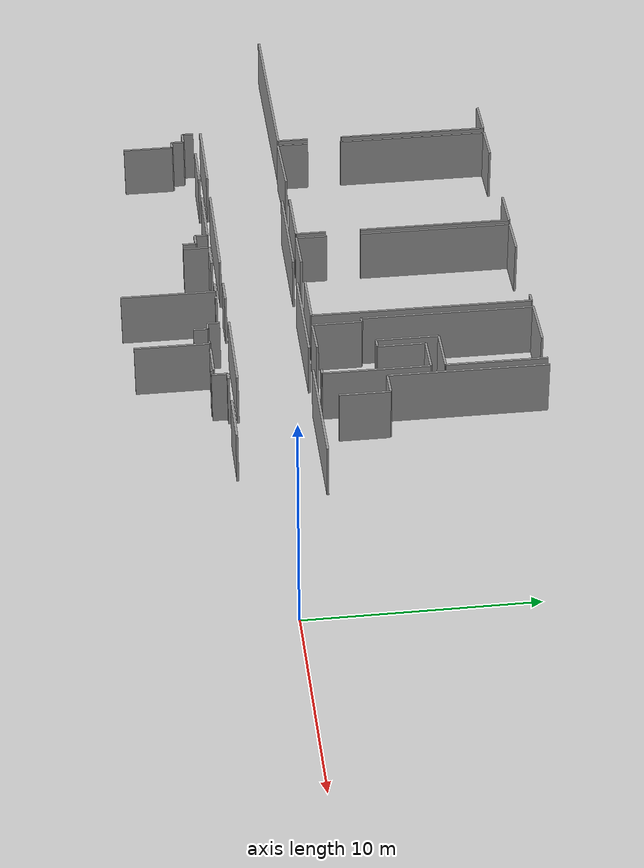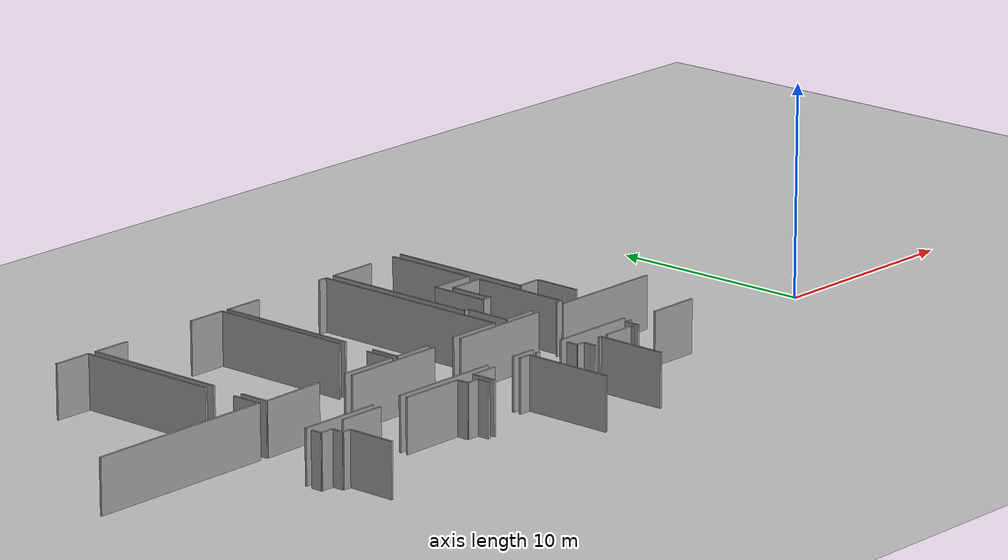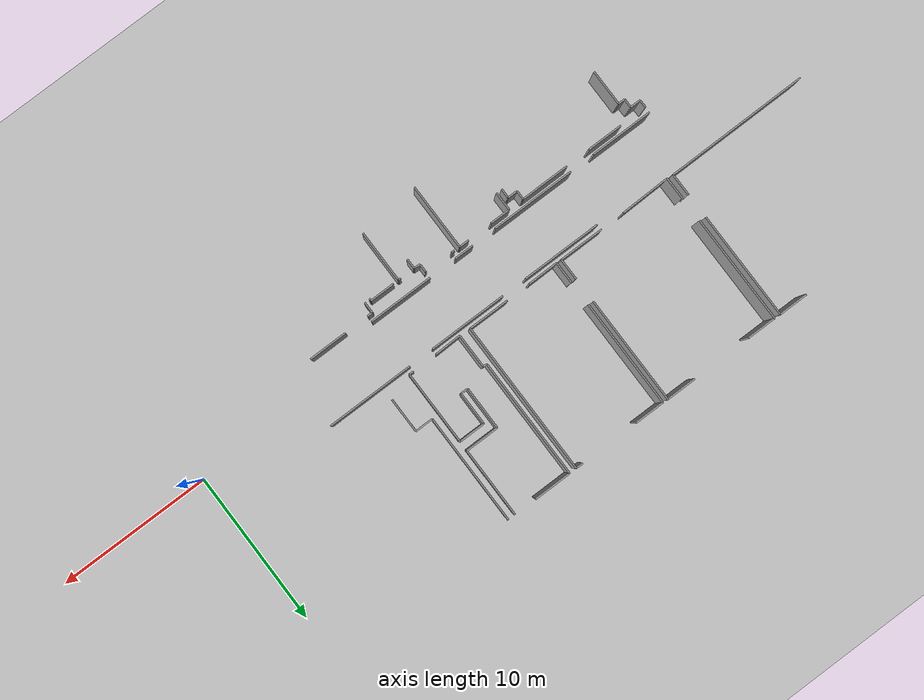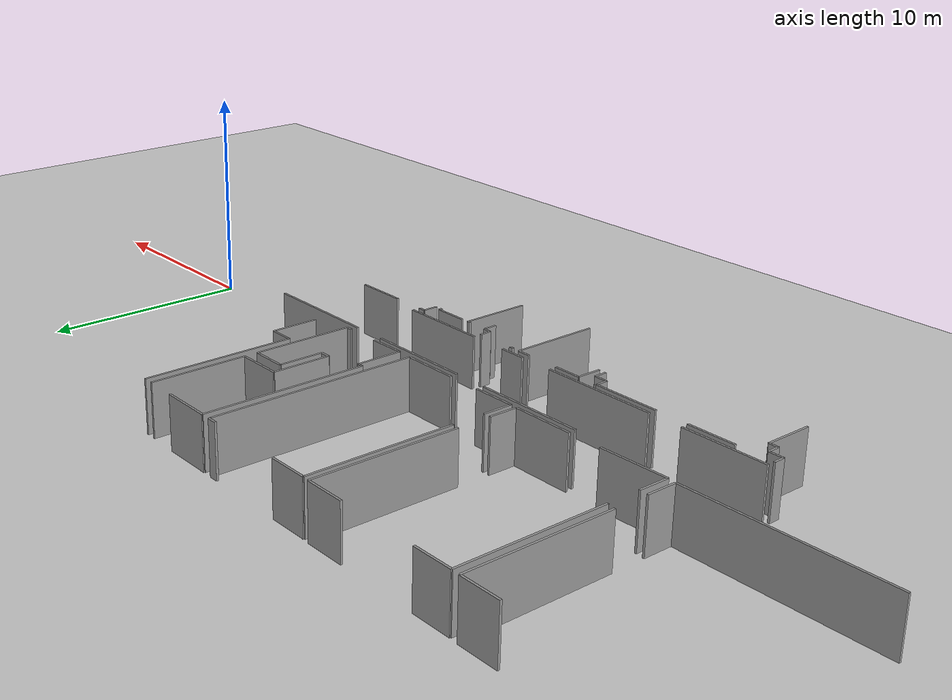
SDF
<sdf version="1.6">
 <world name="default">
  <model name="ground_plane">
   <static>1</static>
   <link name="link">
    <collision name="collision">
     <geometry><plane><normal>0 0 1</normal><size>100 100</size></plane></geometry>
     <surface><friction><ode><mu>100</mu><mu2>50</mu2></ode></friction></surface>
    </collision>
    <visual name="visual">
     <cast_shadows>0</cast_shadows>
     <geometry><plane><normal>0 0 1</normal><size>100 100</size></plane></geometry>
     <material>
      <script><uri>file://media/materials/scripts/gazebo.material</uri><name>Gazebo/Grey</name></script>
     </material>
    </visual>
   </link>
  </model>
  <model name="0510034692_Layout1">
   <static>1</static>
   <link name="Wall_25">
    <collision name="Wall_25_Collision">
     <geometry><box><size>1.8863351728 0.1 2.5</size></box></geometry>
     <pose>0.943167586402 0 1.25 0 0 0</pose>
    </collision>
    <visual name="Wall_25_Visual">
     <pose>0.943167586402 0 1.25 0 0 0</pose>
     <geometry><box><size>1.8863351728 0.1 2.5</size></box></geometry>
     <material>
      <script><uri>file://media/materials/scripts/gazebo.material</uri><name>Gazebo/Grey</name></script>
      <ambient>1 1 1 1</ambient>
     </material>
    </visual>
    <pose>22.3261585938 -0.00558312576371 0 0 0 0.0</pose>
   </link>
   <link name="Wall_26">
    <collision name="Wall_26_Collision">
     <geometry><box><size>6.96862917767 0.1 2.5</size></box></geometry>
     <pose>3.48431458883 0 1.25 0 0 0</pose>
    </collision>
    <visual name="Wall_26_Visual">
     <pose>3.48431458883 0 1.25 0 0 0</pose>
     <geometry><box><size>6.96862917767 0.1 2.5</size></box></geometry>
     <material>
      <script><uri>file://media/materials/scripts/gazebo.material</uri><name>Gazebo/Grey</name></script>
      <ambient>1 1 1 1</ambient>
     </material>
    </visual>
    <pose>24.2124937666 -0.00558312576371 0 0 0 -1.57079632679</pose>
   </link>
   <link name="Wall_27">
    <collision name="Wall_27_Collision">
     <geometry><box><size>1.44247667459 0.1 2.5</size></box></geometry>
     <pose>0.721238337294 0 1.25 0 0 0</pose>
    </collision>
    <visual name="Wall_27_Visual">
     <pose>0.721238337294 0 1.25 0 0 0</pose>
     <geometry><box><size>1.44247667459 0.1 2.5</size></box></geometry>
     <material>
      <script><uri>file://media/materials/scripts/gazebo.material</uri><name>Gazebo/Grey</name></script>
      <ambient>1 1 1 1</ambient>
     </material>
    </visual>
    <pose>24.2124937666 -8.59433388869 0 0 0 -1.57079632679</pose>
   </link>
   <link name="Wall_28">
    <collision name="Wall_28_Collision">
     <geometry><box><size>9.23231282596 0.1 2.5</size></box></geometry>
     <pose>4.61615641298 0 1.25 0 0 0</pose>
    </collision>
    <visual name="Wall_28_Visual">
     <pose>4.61615641298 0 1.25 0 0 0</pose>
     <geometry><box><size>9.23231282596 0.1 2.5</size></box></geometry>
     <material>
      <script><uri>file://media/materials/scripts/gazebo.material</uri><name>Gazebo/Grey</name></script>
      <ambient>1 1 1 1</ambient>
     </material>
    </visual>
    <pose>24.2124937666 -10.0368105633 0 0 0 -3.13678222312</pose>
   </link>
   <link name="Wall_29">
    <collision name="Wall_29_Collision">
     <geometry><box><size>1.45135892012 0.1 2.5</size></box></geometry>
     <pose>0.725679460061 0 1.25 0 0 0</pose>
    </collision>
    <visual name="Wall_29_Visual">
     <pose>0.725679460061 0 1.25 0 0 0</pose>
     <geometry><box><size>1.45135892012 0.1 2.5</size></box></geometry>
     <material>
      <script><uri>file://media/materials/scripts/gazebo.material</uri><name>Gazebo/Grey</name></script>
      <ambient>1 1 1 1</ambient>
     </material>
    </visual>
    <pose>24.6123217048 -10.087566252 0 0 0 1.57079632679</pose>
   </link>
   <link name="Wall_30">
    <collision name="Wall_30_Collision">
     <geometry><box><size>7.02052686943 0.1 2.5</size></box></geometry>
     <pose>3.51026343471 0 1.25 0 0 0</pose>
    </collision>
    <visual name="Wall_30_Visual">
     <pose>3.51026343471 0 1.25 0 0 0</pose>
     <geometry><box><size>7.02052686943 0.1 2.5</size></box></geometry>
     <material>
      <script><uri>file://media/materials/scripts/gazebo.material</uri><name>Gazebo/Grey</name></script>
      <ambient>1 1 1 1</ambient>
     </material>
    </visual>
    <pose>24.6123217048 -7.04971139046 0 0 0 1.57079632679</pose>
   </link>
   <link name="Wall_31">
    <collision name="Wall_31_Collision">
     <geometry><box><size>1.85638931644 0.1 2.5</size></box></geometry>
     <pose>0.928194658218 0 1.25 0 0 0</pose>
    </collision>
    <visual name="Wall_31_Visual">
     <pose>0.928194658218 0 1.25 0 0 0</pose>
     <geometry><box><size>1.85638931644 0.1 2.5</size></box></geometry>
     <material>
      <script><uri>file://media/materials/scripts/gazebo.material</uri><name>Gazebo/Grey</name></script>
      <ambient>1 1 1 1</ambient>
     </material>
    </visual>
    <pose>24.6123217048 -0.0291845210376 0 0 0 0.0</pose>
   </link>
   <link name="Wall_32">
    <collision name="Wall_32_Collision">
     <geometry><box><size>1.92389438249 0.1 2.5</size></box></geometry>
     <pose>0.961947191244 0 1.25 0 0 0</pose>
    </collision>
    <visual name="Wall_32_Visual">
     <pose>0.961947191244 0 1.25 0 0 0</pose>
     <geometry><box><size>1.92389438249 0.1 2.5</size></box></geometry>
     <material>
      <script><uri>file://media/materials/scripts/gazebo.material</uri><name>Gazebo/Grey</name></script>
      <ambient>1 1 1 1</ambient>
     </material>
    </visual>
    <pose>30.3502523192 -0.0291845210376 0 0 0 0.0</pose>
   </link>
   <link name="Wall_33">
    <collision name="Wall_33_Collision">
     <geometry><box><size>6.9867743364 0.1 2.5</size></box></geometry>
     <pose>3.4933871682 0 1.25 0 0 0</pose>
    </collision>
    <visual name="Wall_33_Visual">
     <pose>3.4933871682 0 1.25 0 0 0</pose>
     <geometry><box><size>6.9867743364 0.1 2.5</size></box></geometry>
     <material>
      <script><uri>file://media/materials/scripts/gazebo.material</uri><name>Gazebo/Grey</name></script>
      <ambient>1 1 1 1</ambient>
     </material>
    </visual>
    <pose>32.2741467017 -0.0291845210376 0 0 0 -1.57079632679</pose>
   </link>
   <link name="Wall_34">
    <collision name="Wall_34_Collision">
     <geometry><box><size>1.39019831516 0.1 2.5</size></box></geometry>
     <pose>0.695099157582 0 1.25 0 0 0</pose>
    </collision>
    <visual name="Wall_34_Visual">
     <pose>0.695099157582 0 1.25 0 0 0</pose>
     <geometry><box><size>1.39019831516 0.1 2.5</size></box></geometry>
     <material>
      <script><uri>file://media/materials/scripts/gazebo.material</uri><name>Gazebo/Grey</name></script>
      <ambient>1 1 1 1</ambient>
     </material>
    </visual>
    <pose>32.2741467017 -8.62491419116 0 0 0 -1.57079632679</pose>
   </link>
   <link name="Wall_35">
    <collision name="Wall_35_Collision">
     <geometry><box><size>2.88837935817 0.1 2.5</size></box></geometry>
     <pose>1.44418967908 0 1.25 0 0 0</pose>
    </collision>
    <visual name="Wall_35_Visual">
     <pose>1.44418967908 0 1.25 0 0 0</pose>
     <geometry><box><size>2.88837935817 0.1 2.5</size></box></geometry>
     <material>
      <script><uri>file://media/materials/scripts/gazebo.material</uri><name>Gazebo/Grey</name></script>
      <ambient>1 1 1 1</ambient>
     </material>
    </visual>
    <pose>32.2741467017 -10.0151125063 0 0 0 3.14159265359</pose>
   </link>
   <link name="Wall_36">
    <collision name="Wall_36_Collision">
     <geometry><box><size>3.19639943531 0.1 2.5</size></box></geometry>
     <pose>1.59819971765 0 1.25 0 0 0</pose>
    </collision>
    <visual name="Wall_36_Visual">
     <pose>1.59819971765 0 1.25 0 0 0</pose>
     <geometry><box><size>3.19639943531 0.1 2.5</size></box></geometry>
     <material>
      <script><uri>file://media/materials/scripts/gazebo.material</uri><name>Gazebo/Grey</name></script>
      <ambient>1 1 1 1</ambient>
     </material>
    </visual>
    <pose>27.8078998692 -10.0151125063 0 0 0 -3.11892341179</pose>
   </link>
   <link name="Wall_37">
    <collision name="Wall_37_Collision">
     <geometry><box><size>1.41227703978 0.1 2.5</size></box></geometry>
     <pose>0.706138519888 0 1.25 0 0 0</pose>
    </collision>
    <visual name="Wall_37_Visual">
     <pose>0.706138519888 0 1.25 0 0 0</pose>
     <geometry><box><size>1.41227703978 0.1 2.5</size></box></geometry>
     <material>
      <script><uri>file://media/materials/scripts/gazebo.material</uri><name>Gazebo/Grey</name></script>
      <ambient>1 1 1 1</ambient>
     </material>
    </visual>
    <pose>32.6076115769 -10.0371912309 0 0 0 1.57079632679</pose>
   </link>
   <link name="Wall_38">
    <collision name="Wall_38_Collision">
     <geometry><box><size>6.99159612683 0.1 2.5</size></box></geometry>
     <pose>3.49579806342 0 1.25 0 0 0</pose>
    </collision>
    <visual name="Wall_38_Visual">
     <pose>3.49579806342 0 1.25 0 0 0</pose>
     <geometry><box><size>6.99159612683 0.1 2.5</size></box></geometry>
     <material>
      <script><uri>file://media/materials/scripts/gazebo.material</uri><name>Gazebo/Grey</name></script>
      <ambient>1 1 1 1</ambient>
     </material>
    </visual>
    <pose>32.6076115769 -7.04869627669 0 0 0 1.57079632679</pose>
   </link>
   <link name="Wall_39">
    <collision name="Wall_39_Collision">
     <geometry><box><size>1.90118121177 0.1 2.5</size></box></geometry>
     <pose>0.950590605883 0 1.25 0 0 0</pose>
    </collision>
    <visual name="Wall_39_Visual">
     <pose>0.950590605883 0 1.25 0 0 0</pose>
     <geometry><box><size>1.90118121177 0.1 2.5</size></box></geometry>
     <material>
      <script><uri>file://media/materials/scripts/gazebo.material</uri><name>Gazebo/Grey</name></script>
      <ambient>1 1 1 1</ambient>
     </material>
    </visual>
    <pose>32.6076115769 -0.0571001498562 0 0 0 0.0</pose>
   </link>
   <link name="Wall_40">
    <collision name="Wall_40_Collision">
     <geometry><box><size>0.456801198849 0.1 2.5</size></box></geometry>
     <pose>0.228400599425 0 1.25 0 0 0</pose>
    </collision>
    <visual name="Wall_40_Visual">
     <pose>0.228400599425 0 1.25 0 0 0</pose>
     <geometry><box><size>0.456801198849 0.1 2.5</size></box></geometry>
     <material>
      <script><uri>file://media/materials/scripts/gazebo.material</uri><name>Gazebo/Grey</name></script>
      <ambient>1 1 1 1</ambient>
     </material>
    </visual>
    <pose>38.3408472901 -0.0571001498562 0 0 0 0.0</pose>
   </link>
   <link name="Wall_41">
    <collision name="Wall_41_Collision">
     <geometry><box><size>9.96080391935 0.1 2.5</size></box></geometry>
     <pose>4.98040195968 0 1.25 0 0 0</pose>
    </collision>
    <visual name="Wall_41_Visual">
     <pose>4.98040195968 0 1.25 0 0 0</pose>
     <geometry><box><size>9.96080391935 0.1 2.5</size></box></geometry>
     <material>
      <script><uri>file://media/materials/scripts/gazebo.material</uri><name>Gazebo/Grey</name></script>
      <ambient>1 1 1 1</ambient>
     </material>
    </visual>
    <pose>38.7976484889 -0.0571001498562 0 0 0 -1.57079632679</pose>
   </link>
   <link name="Wall_42">
    <collision name="Wall_42_Collision">
     <geometry><box><size>2.65198473776 0.1 2.5</size></box></geometry>
     <pose>1.32599236888 0 1.25 0 0 0</pose>
    </collision>
    <visual name="Wall_42_Visual">
     <pose>1.32599236888 0 1.25 0 0 0</pose>
     <geometry><box><size>2.65198473776 0.1 2.5</size></box></geometry>
     <material>
      <script><uri>file://media/materials/scripts/gazebo.material</uri><name>Gazebo/Grey</name></script>
      <ambient>1 1 1 1</ambient>
     </material>
    </visual>
    <pose>38.7976484889 -10.0179040692 0 0 0 3.14159265359</pose>
   </link>
   <link name="Wall_43">
    <collision name="Wall_43_Collision">
     <geometry><box><size>1.96269036396 0.1 2.5</size></box></geometry>
     <pose>0.98134518198 0 1.25 0 0 0</pose>
    </collision>
    <visual name="Wall_43_Visual">
     <pose>0.98134518198 0 1.25 0 0 0</pose>
     <geometry><box><size>1.96269036396 0.1 2.5</size></box></geometry>
     <material>
      <script><uri>file://media/materials/scripts/gazebo.material</uri><name>Gazebo/Grey</name></script>
      <ambient>1 1 1 1</ambient>
     </material>
    </visual>
    <pose>34.570207172 -10.0179040692 0 0 0 -3.13176559553</pose>
   </link>
   <link name="Wall_44">
    <collision name="Wall_44_Collision">
     <geometry><box><size>2.21929249108 0.1 2.5</size></box></geometry>
     <pose>1.10964624554 0 1.25 0 0 0</pose>
    </collision>
    <visual name="Wall_44_Visual">
     <pose>1.10964624554 0 1.25 0 0 0</pose>
     <geometry><box><size>2.21929249108 0.1 2.5</size></box></geometry>
     <material>
      <script><uri>file://media/materials/scripts/gazebo.material</uri><name>Gazebo/Grey</name></script>
      <ambient>1 1 1 1</ambient>
     </material>
    </visual>
    <pose>39.5257388442 -10.0590161771 0 0 0 1.57079632679</pose>
   </link>
   <link name="Wall_45">
    <collision name="Wall_45_Collision">
     <geometry><box><size>0.254159143146 0.1 2.5</size></box></geometry>
     <pose>0.127079571573 0 1.25 0 0 0</pose>
    </collision>
    <visual name="Wall_45_Visual">
     <pose>0.127079571573 0 1.25 0 0 0</pose>
     <geometry><box><size>0.254159143146 0.1 2.5</size></box></geometry>
     <material>
      <script><uri>file://media/materials/scripts/gazebo.material</uri><name>Gazebo/Grey</name></script>
      <ambient>1 1 1 1</ambient>
     </material>
    </visual>
    <pose>39.5257388442 -7.83972368603 0 0 0 3.14109340251</pose>
   </link>
   <link name="Wall_46">
    <collision name="Wall_46_Collision">
     <geometry><box><size>7.78135464396 0.1 2.5</size></box></geometry>
     <pose>3.89067732198 0 1.25 0 0 0</pose>
    </collision>
    <visual name="Wall_46_Visual">
     <pose>3.89067732198 0 1.25 0 0 0</pose>
     <geometry><box><size>7.78135464396 0.1 2.5</size></box></geometry>
     <material>
      <script><uri>file://media/materials/scripts/gazebo.material</uri><name>Gazebo/Grey</name></script>
      <ambient>1 1 1 1</ambient>
     </material>
    </visual>
    <pose>39.2715797327 -7.83959679681 0 0 0 1.57079632679</pose>
   </link>
   <link name="Wall_47">
    <collision name="Wall_47_Collision">
     <geometry><box><size>2.41787412335 0.1 2.5</size></box></geometry>
     <pose>1.20893706168 0 1.25 0 0 0</pose>
    </collision>
    <visual name="Wall_47_Visual">
     <pose>1.20893706168 0 1.25 0 0 0</pose>
     <geometry><box><size>2.41787412335 0.1 2.5</size></box></geometry>
     <material>
      <script><uri>file://media/materials/scripts/gazebo.material</uri><name>Gazebo/Grey</name></script>
      <ambient>1 1 1 1</ambient>
     </material>
    </visual>
    <pose>39.2715797327 -0.0582421528533 0 0 0 0.0</pose>
   </link>
   <link name="Wall_48">
    <collision name="Wall_48_Collision">
     <geometry><box><size>4.5286763297 0.1 2.5</size></box></geometry>
     <pose>2.26433816485 0 1.25 0 0 0</pose>
    </collision>
    <visual name="Wall_48_Visual">
     <pose>2.26433816485 0 1.25 0 0 0</pose>
     <geometry><box><size>4.5286763297 0.1 2.5</size></box></geometry>
     <material>
      <script><uri>file://media/materials/scripts/gazebo.material</uri><name>Gazebo/Grey</name></script>
      <ambient>1 1 1 1</ambient>
     </material>
    </visual>
    <pose>43.1574352643 -0.0582421528533 0 0 0 -1.57079632679</pose>
   </link>
   <link name="Wall_49">
    <collision name="Wall_49_Collision">
     <geometry><box><size>2.16840991309 0.1 2.5</size></box></geometry>
     <pose>1.08420495655 0 1.25 0 0 0</pose>
    </collision>
    <visual name="Wall_49_Visual">
     <pose>1.08420495655 0 1.25 0 0 0</pose>
     <geometry><box><size>2.16840991309 0.1 2.5</size></box></geometry>
     <material>
      <script><uri>file://media/materials/scripts/gazebo.material</uri><name>Gazebo/Grey</name></script>
      <ambient>1 1 1 1</ambient>
     </material>
    </visual>
    <pose>43.1574352643 -4.58691848256 0 0 0 3.14159265359</pose>
   </link>
   <link name="Wall_50">
    <collision name="Wall_50_Collision">
     <geometry><box><size>2.79207043874 0.1 2.5</size></box></geometry>
     <pose>1.39603521937 0 1.25 0 0 0</pose>
    </collision>
    <visual name="Wall_50_Visual">
     <pose>1.39603521937 0 1.25 0 0 0</pose>
     <geometry><box><size>2.79207043874 0.1 2.5</size></box></geometry>
     <material>
      <script><uri>file://media/materials/scripts/gazebo.material</uri><name>Gazebo/Grey</name></script>
      <ambient>1 1 1 1</ambient>
     </material>
    </visual>
    <pose>40.9890253512 -4.58691848256 0 0 0 -1.57079632679</pose>
   </link>
   <link name="Wall_51">
    <collision name="Wall_51_Collision">
     <geometry><box><size>0.470124567149 0.1 2.5</size></box></geometry>
     <pose>0.235062283575 0 1.25 0 0 0</pose>
    </collision>
    <visual name="Wall_51_Visual">
     <pose>0.235062283575 0 1.25 0 0 0</pose>
     <geometry><box><size>0.470124567149 0.1 2.5</size></box></geometry>
     <material>
      <script><uri>file://media/materials/scripts/gazebo.material</uri><name>Gazebo/Grey</name></script>
      <ambient>1 1 1 1</ambient>
     </material>
    </visual>
    <pose>40.9890253512 -7.3789889213 0 0 0 0.0</pose>
   </link>
   <link name="Wall_52">
    <collision name="Wall_52_Collision">
     <geometry><box><size>2.14912275136 0.1 2.5</size></box></geometry>
     <pose>1.07456137568 0 1.25 0 0 0</pose>
    </collision>
    <visual name="Wall_52_Visual">
     <pose>1.07456137568 0 1.25 0 0 0</pose>
     <geometry><box><size>2.14912275136 0.1 2.5</size></box></geometry>
     <material>
      <script><uri>file://media/materials/scripts/gazebo.material</uri><name>Gazebo/Grey</name></script>
      <ambient>1 1 1 1</ambient>
     </material>
    </visual>
    <pose>41.4591499183 -7.3789889213 0 0 0 1.57079632679</pose>
   </link>
   <link name="Wall_53">
    <collision name="Wall_53_Collision">
     <geometry><box><size>1.6887686543 0.1 2.5</size></box></geometry>
     <pose>0.844384327151 0 1.25 0 0 0</pose>
    </collision>
    <visual name="Wall_53_Visual">
     <pose>0.844384327151 0 1.25 0 0 0</pose>
     <geometry><box><size>1.6887686543 0.1 2.5</size></box></geometry>
     <material>
      <script><uri>file://media/materials/scripts/gazebo.material</uri><name>Gazebo/Grey</name></script>
      <ambient>1 1 1 1</ambient>
     </material>
    </visual>
    <pose>41.4591499183 -5.22986616994 0 0 0 0.0</pose>
   </link>
   <link name="Wall_54">
    <collision name="Wall_54_Collision">
     <geometry><box><size>4.78765723161 0.1 2.5</size></box></geometry>
     <pose>2.3938286158 0 1.25 0 0 0</pose>
    </collision>
    <visual name="Wall_54_Visual">
     <pose>2.3938286158 0 1.25 0 0 0</pose>
     <geometry><box><size>4.78765723161 0.1 2.5</size></box></geometry>
     <material>
      <script><uri>file://media/materials/scripts/gazebo.material</uri><name>Gazebo/Grey</name></script>
      <ambient>1 1 1 1</ambient>
     </material>
    </visual>
    <pose>43.1479185726 -5.22986616994 0 0 0 -1.57079632679</pose>
   </link>
   <link name="Wall_55">
    <collision name="Wall_55_Collision">
     <geometry><box><size>0.29742833614 0.1 2.5</size></box></geometry>
     <pose>0.14871416807 0 1.25 0 0 0</pose>
    </collision>
    <visual name="Wall_55_Visual">
     <pose>0.14871416807 0 1.25 0 0 0</pose>
     <geometry><box><size>0.29742833614 0.1 2.5</size></box></geometry>
     <material>
      <script><uri>file://media/materials/scripts/gazebo.material</uri><name>Gazebo/Grey</name></script>
      <ambient>1 1 1 1</ambient>
     </material>
    </visual>
    <pose>43.1479185726 -10.0175234015 0 0 0 3.14159265359</pose>
   </link>
   <link name="Wall_56">
    <collision name="Wall_56_Collision">
     <geometry><box><size>1.71540972645 0.1 2.5</size></box></geometry>
     <pose>0.857704863223 0 1.25 0 0 0</pose>
    </collision>
    <visual name="Wall_56_Visual">
     <pose>0.857704863223 0 1.25 0 0 0</pose>
     <geometry><box><size>1.71540972645 0.1 2.5</size></box></geometry>
     <material>
      <script><uri>file://media/materials/scripts/gazebo.material</uri><name>Gazebo/Grey</name></script>
      <ambient>1 1 1 1</ambient>
     </material>
    </visual>
    <pose>41.2406466782 -10.0175234015 0 0 0 -3.11740203485</pose>
   </link>
   <link name="Wall_57">
    <collision name="Wall_57_Collision">
     <geometry><box><size>2.25469458399 0.1 2.5</size></box></geometry>
     <pose>1.12734729199 0 1.25 0 0 0</pose>
    </collision>
    <visual name="Wall_57_Visual">
     <pose>1.12734729199 0 1.25 0 0 0</pose>
     <geometry><box><size>2.25469458399 0.1 2.5</size></box></geometry>
     <material>
      <script><uri>file://media/materials/scripts/gazebo.material</uri><name>Gazebo/Grey</name></script>
      <ambient>1 1 1 1</ambient>
     </material>
    </visual>
    <pose>44.7981129035 -9.47063085514 0 0 0 1.57079632679</pose>
   </link>
   <link name="Wall_58">
    <collision name="Wall_58_Collision">
     <geometry><box><size>1.16090949119 0.1 2.5</size></box></geometry>
     <pose>0.580454745593 0 1.25 0 0 0</pose>
    </collision>
    <visual name="Wall_58_Visual">
     <pose>0.580454745593 0 1.25 0 0 0</pose>
     <geometry><box><size>1.16090949119 0.1 2.5</size></box></geometry>
     <material>
      <script><uri>file://media/materials/scripts/gazebo.material</uri><name>Gazebo/Grey</name></script>
      <ambient>1 1 1 1</ambient>
     </material>
    </visual>
    <pose>44.7981129035 -7.21593627116 0 0 0 3.14159265359</pose>
   </link>
   <link name="Wall_59">
    <collision name="Wall_59_Collision">
     <geometry><box><size>7.16226213029 0.1 2.5</size></box></geometry>
     <pose>3.58113106515 0 1.25 0 0 0</pose>
    </collision>
    <visual name="Wall_59_Visual">
     <pose>3.58113106515 0 1.25 0 0 0</pose>
     <geometry><box><size>7.16226213029 0.1 2.5</size></box></geometry>
     <material>
      <script><uri>file://media/materials/scripts/gazebo.material</uri><name>Gazebo/Grey</name></script>
      <ambient>1 1 1 1</ambient>
     </material>
    </visual>
    <pose>43.6372034123 -7.21593627116 0 0 0 1.57079632679</pose>
   </link>
   <link name="Wall_73">
    <collision name="Wall_73_Collision">
     <geometry><box><size>0.527732273893 0.1 2.5</size></box></geometry>
     <pose>0.263866136946 0 1.25 0 0 0</pose>
    </collision>
    <visual name="Wall_73_Visual">
     <pose>0.263866136946 0 1.25 0 0 0</pose>
     <geometry><box><size>0.527732273893 0.1 2.5</size></box></geometry>
     <material>
      <script><uri>file://media/materials/scripts/gazebo.material</uri><name>Gazebo/Grey</name></script>
      <ambient>1 1 1 1</ambient>
     </material>
    </visual>
    <pose>23.1046239701 -14.0760751641 0 0 0 -1.57079632679</pose>
   </link>
   <link name="Wall_74">
    <collision name="Wall_74_Collision">
     <geometry><box><size>0.67162465153 0.1 2.5</size></box></geometry>
     <pose>0.335812325765 0 1.25 0 0 0</pose>
    </collision>
    <visual name="Wall_74_Visual">
     <pose>0.335812325765 0 1.25 0 0 0</pose>
     <geometry><box><size>0.67162465153 0.1 2.5</size></box></geometry>
     <material>
      <script><uri>file://media/materials/scripts/gazebo.material</uri><name>Gazebo/Grey</name></script>
      <ambient>1 1 1 1</ambient>
     </material>
    </visual>
    <pose>23.1046239701 -14.603807438 0 0 0 0.0</pose>
   </link>
   <link name="Wall_75">
    <collision name="Wall_75_Collision">
     <geometry><box><size>0.575696399772 0.1 2.5</size></box></geometry>
     <pose>0.287848199886 0 1.25 0 0 0</pose>
    </collision>
    <visual name="Wall_75_Visual">
     <pose>0.287848199886 0 1.25 0 0 0</pose>
     <geometry><box><size>0.575696399772 0.1 2.5</size></box></geometry>
     <material>
      <script><uri>file://media/materials/scripts/gazebo.material</uri><name>Gazebo/Grey</name></script>
      <ambient>1 1 1 1</ambient>
     </material>
    </visual>
    <pose>23.7762486217 -14.603807438 0 0 0 -1.57079632679</pose>
   </link>
   <link name="Wall_76">
    <collision name="Wall_76_Collision">
     <geometry><box><size>0.431804022135 0.1 2.5</size></box></geometry>
     <pose>0.215902011067 0 1.25 0 0 0</pose>
    </collision>
    <visual name="Wall_76_Visual">
     <pose>0.215902011067 0 1.25 0 0 0</pose>
     <geometry><box><size>0.431804022135 0.1 2.5</size></box></geometry>
     <material>
      <script><uri>file://media/materials/scripts/gazebo.material</uri><name>Gazebo/Grey</name></script>
      <ambient>1 1 1 1</ambient>
     </material>
    </visual>
    <pose>23.7762486217 -15.1795038378 0 0 0 0.0</pose>
   </link>
   <link name="Wall_77">
    <collision name="Wall_77_Collision">
     <geometry><box><size>2.32181898237 0.1 2.5</size></box></geometry>
     <pose>1.16090949119 0 1.25 0 0 0</pose>
    </collision>
    <visual name="Wall_77_Visual">
     <pose>1.16090949119 0 1.25 0 0 0</pose>
     <geometry><box><size>2.32181898237 0.1 2.5</size></box></geometry>
     <material>
      <script><uri>file://media/materials/scripts/gazebo.material</uri><name>Gazebo/Grey</name></script>
      <ambient>1 1 1 1</ambient>
     </material>
    </visual>
    <pose>24.2080526438 -15.1795038378 0 0 0 -1.57079632679</pose>
   </link>
   <link name="Wall_104">
    <collision name="Wall_104_Collision">
     <geometry><box><size>2.28654377868 0.1 2.5</size></box></geometry>
     <pose>1.14327188934 0 1.25 0 0 0</pose>
    </collision>
    <visual name="Wall_104_Visual">
     <pose>1.14327188934 0 1.25 0 0 0</pose>
     <geometry><box><size>2.28654377868 0.1 2.5</size></box></geometry>
     <material>
      <script><uri>file://media/materials/scripts/gazebo.material</uri><name>Gazebo/Grey</name></script>
      <ambient>1 1 1 1</ambient>
     </material>
    </visual>
    <pose>24.888051984 -14.1037370145 0 0 0 0.0</pose>
   </link>
   <link name="Wall_105">
    <collision name="Wall_105_Collision">
     <geometry><box><size>3.14685270318 0.1 2.5</size></box></geometry>
     <pose>1.57342635159 0 1.25 0 0 0</pose>
    </collision>
    <visual name="Wall_105_Visual">
     <pose>1.57342635159 0 1.25 0 0 0</pose>
     <geometry><box><size>3.14685270318 0.1 2.5</size></box></geometry>
     <material>
      <script><uri>file://media/materials/scripts/gazebo.material</uri><name>Gazebo/Grey</name></script>
      <ambient>1 1 1 1</ambient>
     </material>
    </visual>
    <pose>28.7607110364 -14.1037370145 0 0 0 0.0</pose>
   </link>
   <link name="Wall_106">
    <collision name="Wall_106_Collision">
     <geometry><box><size>0.583690420752 0.1 2.5</size></box></geometry>
     <pose>0.291845210376 0 1.25 0 0 0</pose>
    </collision>
    <visual name="Wall_106_Visual">
     <pose>0.291845210376 0 1.25 0 0 0</pose>
     <geometry><box><size>0.583690420752 0.1 2.5</size></box></geometry>
     <material>
      <script><uri>file://media/materials/scripts/gazebo.material</uri><name>Gazebo/Grey</name></script>
      <ambient>1 1 1 1</ambient>
     </material>
    </visual>
    <pose>31.9075637396 -14.1037370145 0 0 0 -1.57079632679</pose>
   </link>
   <link name="Wall_107">
    <collision name="Wall_107_Collision">
     <geometry><box><size>0.634446109513 0.1 2.5</size></box></geometry>
     <pose>0.317223054757 0 1.25 0 0 0</pose>
    </collision>
    <visual name="Wall_107_Visual">
     <pose>0.317223054757 0 1.25 0 0 0</pose>
     <geometry><box><size>0.634446109513 0.1 2.5</size></box></geometry>
     <material>
      <script><uri>file://media/materials/scripts/gazebo.material</uri><name>Gazebo/Grey</name></script>
      <ambient>1 1 1 1</ambient>
     </material>
    </visual>
    <pose>31.9075637396 -14.6874274352 0 0 0 0.0</pose>
   </link>
   <link name="Wall_108">
    <collision name="Wall_108_Collision">
     <geometry><box><size>0.609068265132 0.1 2.5</size></box></geometry>
     <pose>0.304534132566 0 1.25 0 0 0</pose>
    </collision>
    <visual name="Wall_108_Visual">
     <pose>0.304534132566 0 1.25 0 0 0</pose>
     <geometry><box><size>0.609068265132 0.1 2.5</size></box></geometry>
     <material>
      <script><uri>file://media/materials/scripts/gazebo.material</uri><name>Gazebo/Grey</name></script>
      <ambient>1 1 1 1</ambient>
     </material>
    </visual>
    <pose>32.5420098491 -14.6874274352 0 0 0 -1.57079632679</pose>
   </link>
   <link name="Wall_113">
    <collision name="Wall_113_Collision">
     <geometry><box><size>1.19643847332 0.1 2.5</size></box></geometry>
     <pose>0.59821923666 0 1.25 0 0 0</pose>
    </collision>
    <visual name="Wall_113_Visual">
     <pose>0.59821923666 0 1.25 0 0 0</pose>
     <geometry><box><size>1.19643847332 0.1 2.5</size></box></geometry>
     <material>
      <script><uri>file://media/materials/scripts/gazebo.material</uri><name>Gazebo/Grey</name></script>
      <ambient>1 1 1 1</ambient>
     </material>
    </visual>
    <pose>32.9099885927 -15.2994141525 0 0 0 1.57079632679</pose>
   </link>
   <link name="Wall_114">
    <collision name="Wall_114_Collision">
     <geometry><box><size>1.3087354347 0.1 2.5</size></box></geometry>
     <pose>0.654367717352 0 1.25 0 0 0</pose>
    </collision>
    <visual name="Wall_114_Visual">
     <pose>0.654367717352 0 1.25 0 0 0</pose>
     <geometry><box><size>1.3087354347 0.1 2.5</size></box></geometry>
     <material>
      <script><uri>file://media/materials/scripts/gazebo.material</uri><name>Gazebo/Grey</name></script>
      <ambient>1 1 1 1</ambient>
     </material>
    </visual>
    <pose>32.9099885927 -14.1029756791 0 0 0 0.0</pose>
   </link>
   <link name="Wall_115">
    <collision name="Wall_115_Collision">
     <geometry><box><size>0.627467202308 0.1 2.5</size></box></geometry>
     <pose>0.313733601154 0 1.25 0 0 0</pose>
    </collision>
    <visual name="Wall_115_Visual">
     <pose>0.313733601154 0 1.25 0 0 0</pose>
     <geometry><box><size>0.627467202308 0.1 2.5</size></box></geometry>
     <material>
      <script><uri>file://media/materials/scripts/gazebo.material</uri><name>Gazebo/Grey</name></script>
      <ambient>1 1 1 1</ambient>
     </material>
    </visual>
    <pose>35.8322473731 -14.1029756791 0 0 0 0.0</pose>
   </link>
   <link name="Wall_116">
    <collision name="Wall_116_Collision">
     <geometry><box><size>4.29735727818 0.1 2.5</size></box></geometry>
     <pose>2.14867863909 0 1.25 0 0 0</pose>
    </collision>
    <visual name="Wall_116_Visual">
     <pose>2.14867863909 0 1.25 0 0 0</pose>
     <geometry><box><size>4.29735727818 0.1 2.5</size></box></geometry>
     <material>
      <script><uri>file://media/materials/scripts/gazebo.material</uri><name>Gazebo/Grey</name></script>
      <ambient>1 1 1 1</ambient>
     </material>
    </visual>
    <pose>36.4597145754 -14.1029756791 0 0 0 -1.57079632679</pose>
   </link>
   <link name="Wall_122">
    <collision name="Wall_122_Collision">
     <geometry><box><size>0.207844545476 0.1 2.5</size></box></geometry>
     <pose>0.103922272738 0 1.25 0 0 0</pose>
    </collision>
    <visual name="Wall_122_Visual">
     <pose>0.103922272738 0 1.25 0 0 0</pose>
     <geometry><box><size>0.207844545476 0.1 2.5</size></box></geometry>
     <material>
      <script><uri>file://media/materials/scripts/gazebo.material</uri><name>Gazebo/Grey</name></script>
      <ambient>1 1 1 1</ambient>
     </material>
    </visual>
    <pose>36.8282008758 -14.12403929 0 0 0 0.0</pose>
   </link>
   <link name="Wall_123">
    <collision name="Wall_123_Collision">
     <geometry><box><size>0.5468925464 0.1 2.5</size></box></geometry>
     <pose>0.2734462732 0 1.25 0 0 0</pose>
    </collision>
    <visual name="Wall_123_Visual">
     <pose>0.2734462732 0 1.25 0 0 0</pose>
     <geometry><box><size>0.5468925464 0.1 2.5</size></box></geometry>
     <material>
      <script><uri>file://media/materials/scripts/gazebo.material</uri><name>Gazebo/Grey</name></script>
      <ambient>1 1 1 1</ambient>
     </material>
    </visual>
    <pose>38.8711173484 -14.12403929 0 0 0 -1.57079632679</pose>
   </link>
   <link name="Wall_124">
    <collision name="Wall_124_Collision">
     <geometry><box><size>0.407148048585 0.1 2.5</size></box></geometry>
     <pose>0.203574024293 0 1.25 0 0 0</pose>
    </collision>
    <visual name="Wall_124_Visual">
     <pose>0.203574024293 0 1.25 0 0 0</pose>
     <geometry><box><size>0.407148048585 0.1 2.5</size></box></geometry>
     <material>
      <script><uri>file://media/materials/scripts/gazebo.material</uri><name>Gazebo/Grey</name></script>
      <ambient>1 1 1 1</ambient>
     </material>
    </visual>
    <pose>38.8711173484 -14.6709318364 0 0 0 -0.0692424530656</pose>
   </link>
   <link name="Wall_125">
    <collision name="Wall_125_Collision">
     <geometry><box><size>0.636372839054 0.1 2.5</size></box></geometry>
     <pose>0.318186419527 0 1.25 0 0 0</pose>
    </collision>
    <visual name="Wall_125_Visual">
     <pose>0.318186419527 0 1.25 0 0 0</pose>
     <geometry><box><size>0.636372839054 0.1 2.5</size></box></geometry>
     <material>
      <script><uri>file://media/materials/scripts/gazebo.material</uri><name>Gazebo/Grey</name></script>
      <ambient>1 1 1 1</ambient>
     </material>
    </visual>
    <pose>39.2772897477 -14.6991012436 0 0 0 -1.57937039385</pose>
   </link>
   <link name="Wall_128">
    <collision name="Wall_128_Collision">
     <geometry><box><size>0.164575320808 0.1 2.5</size></box></geometry>
     <pose>0.0822876604038 0 1.25 0 0 0</pose>
    </collision>
    <visual name="Wall_128_Visual">
     <pose>0.0822876604038 0 1.25 0 0 0</pose>
     <geometry><box><size>0.164575320808 0.1 2.5</size></box></geometry>
     <material>
      <script><uri>file://media/materials/scripts/gazebo.material</uri><name>Gazebo/Grey</name></script>
      <ambient>1 1 1 1</ambient>
     </material>
    </visual>
    <pose>40.2318773641 -14.7045574802 0 0 0 0.0</pose>
   </link>
   <link name="Wall_129">
    <collision name="Wall_129_Collision">
     <geometry><box><size>3.34543433546 0.1 2.5</size></box></geometry>
     <pose>1.67271716773 0 1.25 0 0 0</pose>
    </collision>
    <visual name="Wall_129_Visual">
     <pose>1.67271716773 0 1.25 0 0 0</pose>
     <geometry><box><size>3.34543433546 0.1 2.5</size></box></geometry>
     <material>
      <script><uri>file://media/materials/scripts/gazebo.material</uri><name>Gazebo/Grey</name></script>
      <ambient>1 1 1 1</ambient>
     </material>
    </visual>
    <pose>40.3964526849 -14.7045574802 0 0 0 -1.57079632679</pose>
   </link>
   <link name="Wall_134">
    <collision name="Wall_134_Collision">
     <geometry><box><size>0.718192995969 0.1 2.5</size></box></geometry>
     <pose>0.359096497984 0 1.25 0 0 0</pose>
    </collision>
    <visual name="Wall_134_Visual">
     <pose>0.359096497984 0 1.25 0 0 0</pose>
     <geometry><box><size>0.718192995969 0.1 2.5</size></box></geometry>
     <material>
      <script><uri>file://media/materials/scripts/gazebo.material</uri><name>Gazebo/Grey</name></script>
      <ambient>1 1 1 1</ambient>
     </material>
    </visual>
    <pose>42.7040600744 -14.8225644566 0 0 0 1.57079632679</pose>
   </link>
   <link name="Wall_135">
    <collision name="Wall_135_Collision">
     <geometry><box><size>0.341585785362 0.1 2.5</size></box></geometry>
     <pose>0.170792892681 0 1.25 0 0 0</pose>
    </collision>
    <visual name="Wall_135_Visual">
     <pose>0.170792892681 0 1.25 0 0 0</pose>
     <geometry><box><size>0.341585785362 0.1 2.5</size></box></geometry>
     <material>
      <script><uri>file://media/materials/scripts/gazebo.material</uri><name>Gazebo/Grey</name></script>
      <ambient>1 1 1 1</ambient>
     </material>
    </visual>
    <pose>42.7040600744 -14.1043714606 0 0 0 0.0</pose>
   </link>
   <link name="Wall_136">
    <collision name="Wall_136_Collision">
     <geometry><box><size>2.48943964451 0.1 2.5</size></box></geometry>
     <pose>1.24471982225 0 1.25 0 0 0</pose>
    </collision>
    <visual name="Wall_136_Visual">
     <pose>1.24471982225 0 1.25 0 0 0</pose>
     <geometry><box><size>2.48943964451 0.1 2.5</size></box></geometry>
     <material>
      <script><uri>file://media/materials/scripts/gazebo.material</uri><name>Gazebo/Grey</name></script>
      <ambient>1 1 1 1</ambient>
     </material>
    </visual>
    <pose>44.6204679928 -14.1043714606 0 0 0 0.0</pose>
   </link>
   <link name="Wall_147">
    <collision name="Wall_147_Collision">
     <geometry><box><size>1.60108820197 0.1 2.5</size></box></geometry>
     <pose>0.800544100984 0 1.25 0 0 0</pose>
    </collision>
    <visual name="Wall_147_Visual">
     <pose>0.800544100984 0 1.25 0 0 0</pose>
     <geometry><box><size>1.60108820197 0.1 2.5</size></box></geometry>
     <material>
      <script><uri>file://media/materials/scripts/gazebo.material</uri><name>Gazebo/Grey</name></script>
      <ambient>1 1 1 1</ambient>
     </material>
    </visual>
    <pose>40.7591020811 -14.6983399083 0 0 0 0.0</pose>
   </link>
   <link name="Wall_148">
    <collision name="Wall_148_Collision">
     <geometry><box><size>0.145161269857 0.1 2.5</size></box></geometry>
     <pose>0.0725806349283 0 1.25 0 0 0</pose>
    </collision>
    <visual name="Wall_148_Visual">
     <pose>0.0725806349283 0 1.25 0 0 0</pose>
     <geometry><box><size>0.145161269857 0.1 2.5</size></box></geometry>
     <material>
      <script><uri>file://media/materials/scripts/gazebo.material</uri><name>Gazebo/Grey</name></script>
      <ambient>1 1 1 1</ambient>
     </material>
    </visual>
    <pose>42.3601902831 -14.6983399083 0 0 0 -1.57079632679</pose>
   </link>
   <link name="Wall_201">
    <collision name="Wall_201_Collision">
     <geometry><box><size>5.11833054389 0.1 2.5</size></box></geometry>
     <pose>2.55916527194 0 1.25 0 0 0</pose>
    </collision>
    <visual name="Wall_201_Visual">
     <pose>2.55916527194 0 1.25 0 0 0</pose>
     <geometry><box><size>5.11833054389 0.1 2.5</size></box></geometry>
     <material>
      <script><uri>file://media/materials/scripts/gazebo.material</uri><name>Gazebo/Grey</name></script>
      <ambient>1 1 1 1</ambient>
     </material>
    </visual>
    <pose>29.433477691 -10.3783963486 0 0 0 0.0</pose>
   </link>
   <link name="Wall_202">
    <collision name="Wall_202_Collision">
     <geometry><box><size>5.02709719334 0.1 2.5</size></box></geometry>
     <pose>2.51354859667 0 1.25 0 0 0</pose>
    </collision>
    <visual name="Wall_202_Visual">
     <pose>2.51354859667 0 1.25 0 0 0</pose>
     <geometry><box><size>5.02709719334 0.1 2.5</size></box></geometry>
     <material>
      <script><uri>file://media/materials/scripts/gazebo.material</uri><name>Gazebo/Grey</name></script>
      <ambient>1 1 1 1</ambient>
     </material>
    </visual>
    <pose>36.1968001076 -10.3783963486 0 0 0 0.0</pose>
   </link>
   <link name="Wall_203">
    <collision name="Wall_203_Collision">
     <geometry><box><size>5.63502345547 0.1 2.5</size></box></geometry>
     <pose>2.81751172774 0 1.25 0 0 0</pose>
    </collision>
    <visual name="Wall_203_Visual">
     <pose>2.81751172774 0 1.25 0 0 0</pose>
     <geometry><box><size>5.63502345547 0.1 2.5</size></box></geometry>
     <material>
      <script><uri>file://media/materials/scripts/gazebo.material</uri><name>Gazebo/Grey</name></script>
      <ambient>1 1 1 1</ambient>
     </material>
    </visual>
    <pose>42.845034 -10.3783963486 0 0 0 0.0</pose>
   </link>
   <link name="Wall_207">
    <collision name="Wall_207_Collision">
     <geometry><box><size>4.17161005927 0.1 2.5</size></box></geometry>
     <pose>2.08580502963 0 1.25 0 0 0</pose>
    </collision>
    <visual name="Wall_207_Visual">
     <pose>2.08580502963 0 1.25 0 0 0</pose>
     <geometry><box><size>4.17161005927 0.1 2.5</size></box></geometry>
     <material>
      <script><uri>file://media/materials/scripts/gazebo.material</uri><name>Gazebo/Grey</name></script>
      <ambient>1 1 1 1</ambient>
     </material>
    </visual>
    <pose>43.0511020963 -13.720912232 0 0 0 3.14159265359</pose>
   </link>
   <link name="Wall_208">
    <collision name="Wall_208_Collision">
     <geometry><box><size>1.2287952249 0.1 2.5</size></box></geometry>
     <pose>0.614397612452 0 1.25 0 0 0</pose>
    </collision>
    <visual name="Wall_208_Visual">
     <pose>0.614397612452 0 1.25 0 0 0</pose>
     <geometry><box><size>1.2287952249 0.1 2.5</size></box></geometry>
     <material>
      <script><uri>file://media/materials/scripts/gazebo.material</uri><name>Gazebo/Grey</name></script>
      <ambient>1 1 1 1</ambient>
     </material>
    </visual>
    <pose>37.0555863614 -13.720912232 0 0 0 3.14159265359</pose>
   </link>
   <link name="Wall_209">
    <collision name="Wall_209_Collision">
     <geometry><box><size>5.44976519149 0.1 2.5</size></box></geometry>
     <pose>2.72488259575 0 1.25 0 0 0</pose>
    </collision>
    <visual name="Wall_209_Visual">
     <pose>2.72488259575 0 1.25 0 0 0</pose>
     <geometry><box><size>5.44976519149 0.1 2.5</size></box></geometry>
     <material>
      <script><uri>file://media/materials/scripts/gazebo.material</uri><name>Gazebo/Grey</name></script>
      <ambient>1 1 1 1</ambient>
     </material>
    </visual>
    <pose>34.2152980184 -13.720912232 0 0 0 3.14159265359</pose>
   </link>
   <link name="Wall_210">
    <collision name="Wall_210_Collision">
     <geometry><box><size>4.02746390319 0.1 2.5</size></box></geometry>
     <pose>2.01373195159 0 1.25 0 0 0</pose>
    </collision>
    <visual name="Wall_210_Visual">
     <pose>2.01373195159 0 1.25 0 0 0</pose>
     <geometry><box><size>4.02746390319 0.1 2.5</size></box></geometry>
     <material>
      <script><uri>file://media/materials/scripts/gazebo.material</uri><name>Gazebo/Grey</name></script>
      <ambient>1 1 1 1</ambient>
     </material>
    </visual>
    <pose>27.1352601039 -13.720912232 0 0 0 3.14159265359</pose>
   </link>
   <pose>-56.4 12.4296829419 0 0 0 0</pose>
  </model>
 </world>
</sdf>
